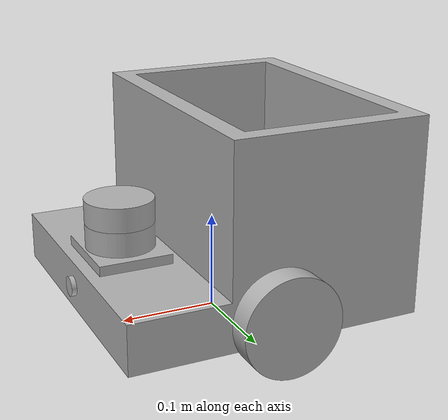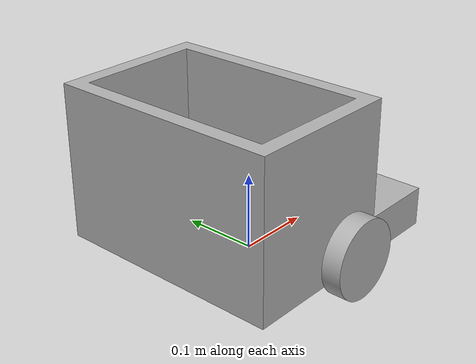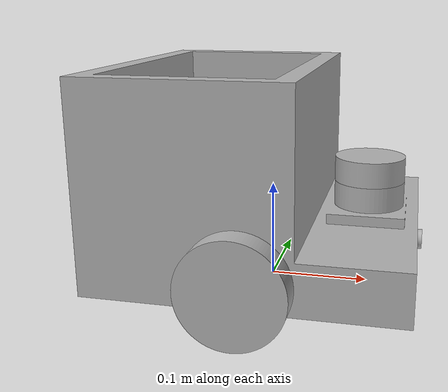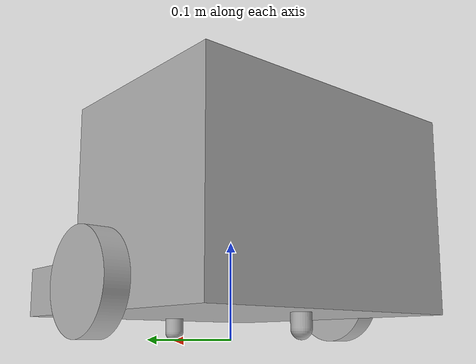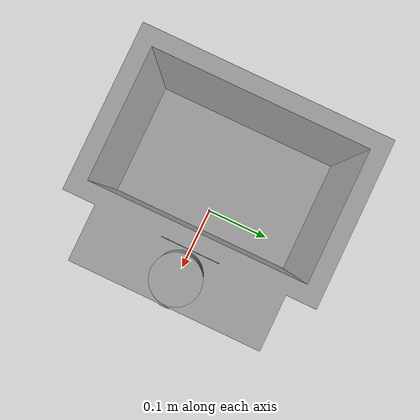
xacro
<?xml version="1.0" ?>
<robot name="final_robot_test" xmlns:xacro="http://www.ros.org/wiki/xacro">

<xacro:include filename="$(find final_robot_test_description)/urdf/materials.xacro" />
<xacro:include filename="$(find final_robot_test_description)/urdf/final_robot_test.trans" />
<xacro:include filename="$(find final_robot_test_description)/urdf/final_robot_test.gazebo" />
<link name="base_link">
  <inertial>
    <origin xyz="-0.04003711060775827 0.0 0.1316208950593438" rpy="0 0 0"/>
    <mass value="26.623964333772644"/>
    <inertia ixx="0.371016" iyy="0.261437" izz="0.469995" ixy="-0.0" iyz="0.0" ixz="0.020627"/>
  </inertial>
  <visual>
    <origin xyz="0 0 0" rpy="0 0 0"/>
    <geometry>
      <mesh filename="package://final_robot_test_description/meshes/base_link.stl" scale="0.001 0.001 0.001"/>
    </geometry>
    <material name="silver"/>
  </visual>
  <collision>
    <origin xyz="0 0 0" rpy="0 0 0"/>
    <geometry>
      <mesh filename="package://final_robot_test_description/meshes/base_link.stl" scale="0.001 0.001 0.001"/>
    </geometry>
  </collision>
</link>

<link name="right_wheel_1">
  <inertial>
    <origin xyz="-5.790023100122029e-18 -0.012500000000000011 0.0" rpy="0 0 0"/>
    <mass value="0.1826050729899067"/>
    <inertia ixx="0.000124" iyy="0.000228" izz="0.000124" ixy="-0.0" iyz="0.0" ixz="0.0"/>
  </inertial>
  <visual>
    <origin xyz="-0.0 0.15 -0.05" rpy="0 0 0"/>
    <geometry>
      <mesh filename="package://final_robot_test_description/meshes/right_wheel_1.stl" scale="0.001 0.001 0.001"/>
    </geometry>
    <material name="silver"/>
  </visual>
  <collision>
    <origin xyz="-0.0 0.15 -0.05" rpy="0 0 0"/>
    <geometry>
      <mesh filename="package://final_robot_test_description/meshes/right_wheel_1.stl" scale="0.001 0.001 0.001"/>
    </geometry>
  </collision>
</link>

<link name="left_wheel_1">
  <inertial>
    <origin xyz="-5.790023100122029e-18 0.012500000000000011 0.0" rpy="0 0 0"/>
    <mass value="0.1826050729899067"/>
    <inertia ixx="0.000124" iyy="0.000228" izz="0.000124" ixy="0.0" iyz="-0.0" ixz="0.0"/>
  </inertial>
  <visual>
    <origin xyz="-0.0 -0.15 -0.05" rpy="0 0 0"/>
    <geometry>
      <mesh filename="package://final_robot_test_description/meshes/left_wheel_1.stl" scale="0.001 0.001 0.001"/>
    </geometry>
    <material name="silver"/>
  </visual>
  <collision>
    <origin xyz="-0.0 -0.15 -0.05" rpy="0 0 0"/>
    <geometry>
      <mesh filename="package://final_robot_test_description/meshes/left_wheel_1.stl" scale="0.001 0.001 0.001"/>
    </geometry>
  </collision>
</link>

<link name="lidar_1">
  <inertial>
    <origin xyz="-2.7755575615628914e-17 0.0 0.012500000000000011" rpy="0 0 0"/>
    <mass value="0.7552585088770707"/>
    <inertia ixx="0.000271" iyy="0.000271" izz="0.000463" ixy="0.0" iyz="0.0" ixz="-0.0"/>
  </inertial>
  <visual>
    <origin xyz="-0.1 -0.0 -0.11" rpy="0 0 0"/>
    <geometry>
      <mesh filename="package://final_robot_test_description/meshes/lidar_1.stl" scale="0.001 0.001 0.001"/>
    </geometry>
    <material name="silver"/>
  </visual>
  <collision>
    <origin xyz="-0.1 -0.0 -0.11" rpy="0 0 0"/>
    <geometry>
      <mesh filename="package://final_robot_test_description/meshes/lidar_1.stl" scale="0.001 0.001 0.001"/>
    </geometry>
  </collision>
</link>

<link name="camera_1">
  <inertial>
    <origin xyz="0.00250000000000003 1.41357985842823e-18 0.0" rpy="0 0 0"/>
    <mass value="0.012330751165339934"/>
    <inertia ixx="1e-06" iyy="0.0" izz="0.0" ixy="-0.0" iyz="0.0" ixz="0.0"/>
  </inertial>
  <visual>
    <origin xyz="-0.15 -0.0 -0.05" rpy="0 0 0"/>
    <geometry>
      <mesh filename="package://final_robot_test_description/meshes/camera_1.stl" scale="0.001 0.001 0.001"/>
    </geometry>
    <material name="silver"/>
  </visual>
  <collision>
    <origin xyz="-0.15 -0.0 -0.05" rpy="0 0 0"/>
    <geometry>
      <mesh filename="package://final_robot_test_description/meshes/camera_1.stl" scale="0.001 0.001 0.001"/>
    </geometry>
  </collision>
</link>

<joint name="Revolute 1" type="continuous">
  <origin xyz="0.0 -0.15 0.05" rpy="0 0 0"/>
  <parent link="base_link"/>
  <child link="right_wheel_1"/>
  <axis xyz="0.0 1.0 0.0"/>
</joint>

<joint name="Revolute 2" type="continuous">
  <origin xyz="0.0 0.15 0.05" rpy="0 0 0"/>
  <parent link="base_link"/>
  <child link="left_wheel_1"/>
  <axis xyz="0.0 1.0 0.0"/>
</joint>

<joint name="Rigid 3" type="fixed">
  <origin xyz="0.1 0.0 0.11" rpy="0 0 0"/>
  <parent link="base_link"/>
  <child link="lidar_1"/>
</joint>

<joint name="Rigid 4" type="fixed">
  <origin xyz="0.15 0.0 0.05" rpy="0 0 0"/>
  <parent link="base_link"/>
  <child link="camera_1"/>
</joint>

</robot>

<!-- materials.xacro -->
<robot name="final_robot_test" xmlns:xacro="http://www.ros.org/wiki/xacro" >

<material name="silver">
  <color rgba="0.700 0.700 0.700 1.000"/>
</material>

</robot>

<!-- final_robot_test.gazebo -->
<robot name="final_robot_test" xmlns:xacro="http://www.ros.org/wiki/xacro" >

<xacro:property name="body_color" value="Gazebo/Silver" />

<gazebo>
  <plugin name="control" filename="libgazebo_ros_control.so"/>
</gazebo>
<gazebo reference="base_link">
  <material>${body_color}</material>
  <mu1>0.1</mu1>
  <mu2>0.1</mu2>
  <selfCollide>true</selfCollide>
  <gravity>true</gravity>
</gazebo>

<gazebo reference="right_wheel_1">
  <material>${body_color}</material>
  <mu1>1500</mu1>
  <mu2>1500</mu2>
  <selfCollide>true</selfCollide>
</gazebo>

<gazebo reference="left_wheel_1">
  <material>${body_color}</material>
  <mu1>1500</mu1>
  <mu2>1500</mu2>
  <selfCollide>true</selfCollide>
</gazebo>

<gazebo reference="lidar_1">
  <material>${body_color}</material>
  <mu1>0.2</mu1>
  <mu2>0.2</mu2>
  <selfCollide>true</selfCollide>
</gazebo>

<gazebo reference="camera_1">
  <material>${body_color}</material>
  <mu1>0.2</mu1>
  <mu2>0.2</mu2>
  <selfCollide>true</selfCollide>
</gazebo>

<gazebo>
  <plugin name="differential_drive_controller" filename="libgazebo_ros_diff_drive.so">

    <!-- Plugin update rate in Hz -->
    <updateRate>100</updateRate>

    <!-- Name of left joint, defaults to `left_joint` -->
    <leftJoint>Revolute 2</leftJoint>

    <!-- Name of right joint, defaults to `right_joint` -->
    <rightJoint>Revolute 1</rightJoint>

    <!-- The distance from the center of one wheel to the other, in meters, defaults to 0.34 m -->
    <wheelSeparation>0.3</wheelSeparation>

    <!-- Diameter of the wheels, in meters, defaults to 0.15 m -->
    <wheelDiameter>0.1</wheelDiameter>

    <!-- Wheel acceleration, in rad/s^2, defaults to 0.0 rad/s^2 -->
    <wheelAcceleration>1.0</wheelAcceleration>

    <!-- Maximum torque which the wheels can produce, in Nm, defaults to 5 Nm -->
    <wheelTorque>50</wheelTorque>

    <!-- Topic to receive geometry_msgs/Twist message commands, defaults to `cmd_vel` -->
    <commandTopic>cmd_vel_filtered</commandTopic>

    <!-- Topic to publish nav_msgs/Odometry messages, defaults to `odom` -->
    <odometryTopic>odom</odometryTopic>

    <!-- Odometry frame, defaults to `odom` -->
    <odometryFrame>odom</odometryFrame>

    <!-- Robot frame to calculate odometry from, defaults to `base_footprint` -->
    <robotBaseFrame>base_link</robotBaseFrame>

    <!-- Odometry source, 0 for ENCODER, 1 for WORLD, defaults to WORLD -->
    <odometrySource>1</odometrySource>

    <!-- Set to true to publish transforms for the wheel links, defaults to false -->
    <publishWheelTF>true</publishWheelTF>

    <!-- Set to true to publish transforms for the odometry, defaults to true -->
    <publishOdom>true</publishOdom>

    <!-- Set to true to publish sensor_msgs/JointState on /joint_states for the wheel joints, defaults to false -->
    <publishWheelJointState>true</publishWheelJointState>

    <!-- Set to true to swap right and left wheels, defaults to true -->
    <legacyMode>false</legacyMode>
  </plugin>
</gazebo>

<!-- hokuyo -->
<gazebo reference="lidar_1">
  <sensor type="ray" name="head_hokuyo_sensor">
    <pose>0 0 0 0 0 0</pose>
    <visualize>true</visualize>
    <update_rate>40</update_rate>
    <ray>
      <scan>
        <horizontal>
          <samples>720</samples>
          <resolution>1</resolution>
          <min_angle>-1.570796</min_angle>
          <max_angle>1.570796</max_angle>
        </horizontal>
      </scan>
      <range>
        <min>0.10</min>
        <max>30.0</max>
        <resolution>0.01</resolution>
      </range>
      <noise>
        <type>gaussian</type>
        <mean>0.0</mean>
        <stddev>0.01</stddev>
      </noise>
    </ray>
    <plugin name="gazebo_ros_head_hokuyo_controller" filename="libgazebo_ros_laser.so">
      <topicName>/scan</topicName>
      <frameName>lidar_1</frameName>
    </plugin>
  </sensor>
</gazebo>

<!-- camera -->
<gazebo reference="camera_1">
  <sensor type="camera" name="camera1">
    <update_rate>30.0</update_rate>
    <camera name="head">
      <horizontal_fov>1.3962634</horizontal_fov>
      <image>
        <width>800</width>
        <height>800</height>
        <format>R8G8B8</format>
      </image>
      <clip>
        <near>0.02</near>
        <far>300</far>
      </clip>
      <noise>
        <type>gaussian</type>
        <!-- Noise is sampled independently per pixel on each frame.
              That pixel's noise value is added to each of its color
              channels, which at that point lie in the range [0,1]. -->
        <mean>0.0</mean>
        <stddev>0.007</stddev>
      </noise>
    </camera>
    <plugin name="camera_controller" filename="libgazebo_ros_camera.so">
      <alwaysOn>true</alwaysOn>
      <updateRate>0.0</updateRate>
      <cameraName>camera1</cameraName>
      <imageTopicName>image_raw</imageTopicName>
      <cameraInfoTopicName>camera_info</cameraInfoTopicName>
      <frameName>camera_1</frameName>
      <hackBaseline>0.07</hackBaseline>
      <distortionK1>0.0</distortionK1>
      <distortionK2>0.0</distortionK2>
      <distortionK3>0.0</distortionK3>
      <distortionT1>0.0</distortionT1>
      <distortionT2>0.0</distortionT2>
    </plugin>
  </sensor>
</gazebo>

</robot>
